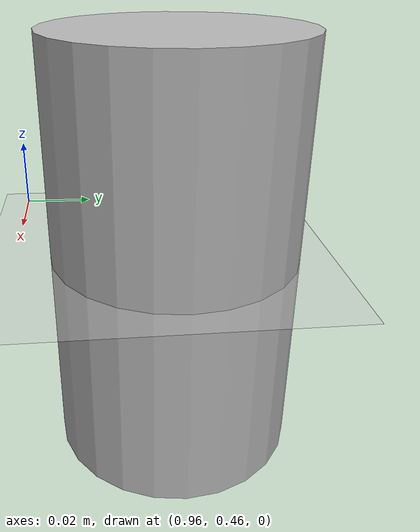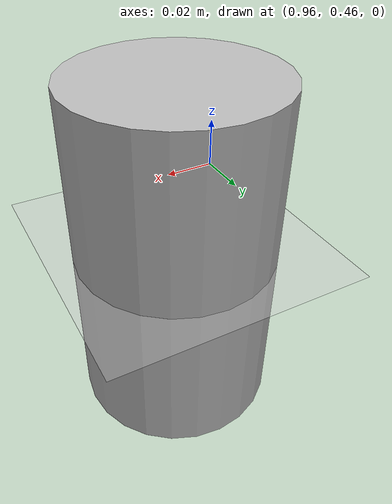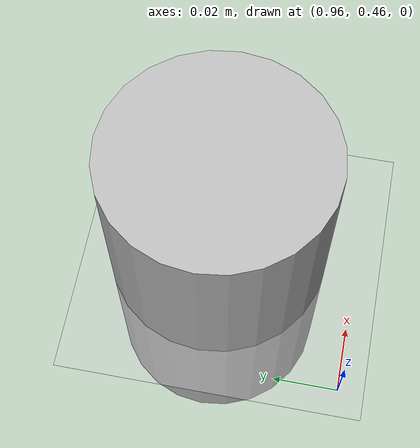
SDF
<?xml version="1.0" ?>
<sdf version="1.4">
  <!-- We use a custom world for the rrbot so that the camera angle is launched correctly -->

  <world name="default">
    <include>
      <uri>model://ground_plane</uri>
    </include>

    <!-- Global light source -->
    <include>
      <uri>model://sun</uri>
    </include>

    <!-- Focus camera on tall pendulum -->
    <gui fullscreen='0'>
      <camera name='user_camera'>
        <pose>4.927360 -4.376610 3.740080 0.000000 0.275643 2.356190</pose>
        <view_controller>orbit</view_controller>
      </camera>
    </gui>

    <model name='beer'>
      <include>
        <uri>model://beer</uri>
      </include>
      <pose>1 0.504428 0 0 -0 0</pose>
    </model>

  </world>
</sdf>

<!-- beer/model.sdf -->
<sdf version='1.4'>
  <model name="beer">
    <link name='link'>
      <pose>0 0 0 0 0 0</pose>
      <inertial>
        <mass>0.390</mass>
        <inertia>
          <ixx>0.00058</ixx>
          <ixy>0</ixy>
          <ixz>0</ixz>
          <iyy>0.00058</iyy>
          <iyz>0</iyz>
          <izz>0.00025</izz>
        </inertia>
      </inertial>
      <collision name='collision'>
        <geometry>
          <cylinder>
            <radius>0.03500</radius>
            <length>0.12000</length>
          </cylinder>
        </geometry>
      </collision>

      <visual name='visual'>
        <geometry>
          <cylinder>
            <radius>0.03500</radius>
            <length>0.12000</length>
          </cylinder>
        </geometry>

        <material>
          <script>
            <uri>model://beer/materials/scripts</uri>
            <uri>model://beer/materials/textures</uri>
            <name>Beer/Diffuse</name>
          </script>
        </material>
      </visual>
    </link>
  </model>
</sdf>
